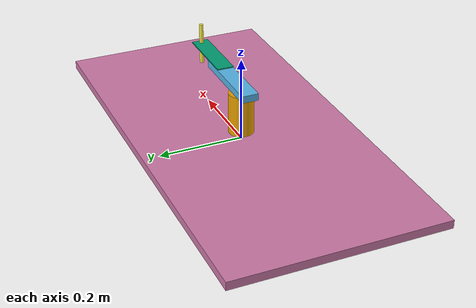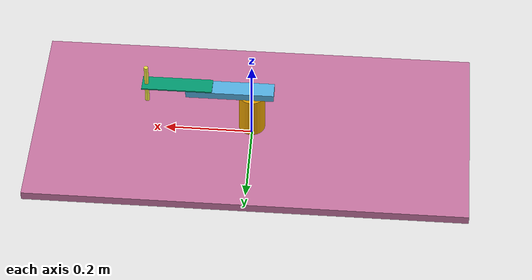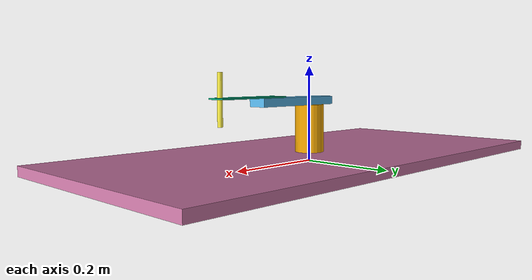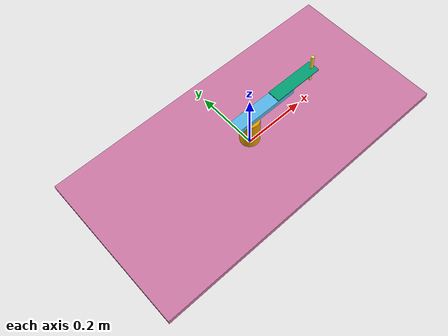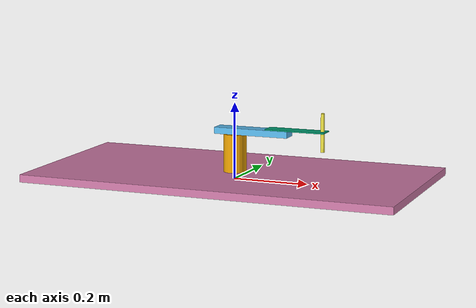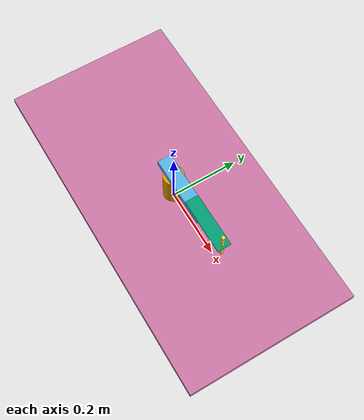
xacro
<?xml version="1.0" ?>
<robot name="myrobot" xmlns:xacro="http://wiki.ros.org/xacro">
  <xacro:include filename="$(find myrobot1_support)/urdf/myrobot_macro.xacro"/>
  <xacro:myrobot prefix=""/>
  <link name="world"/>
  <link name="table">
    <visual>
        <origin xyz="0 0 0.01" rpy="0 0 0"/>
      <geometry>
        <box size="1.0 0.5 0.02"/>
      </geometry>
    </visual>
    <collision>
        <origin xyz="0 0 0.01" rpy="0 0 0"/>
      <geometry>
        <box size="1.0 1.0 0.02"/>
      </geometry>
    </collision>
  </link>
  <link name="camera_frame"/>

  <joint name="world_to_table" type="fixed">
    <parent link="world"/>
    <child link="table"/>
    <origin xyz="0 0 0" rpy="0 0 0"/>
  </joint>

  <joint name="world_to_camera" type="fixed">
    <parent link="world"/>
    <child link="camera_frame"/>
    <origin xyz="0.1 0 0.3" rpy="0 3.14159 0"/>
  </joint>
  <joint name="table_to_robot" type="fixed">
    <parent link="table"/>
    <child link="base_link"/>
    <origin xyz="0 0 0.02" rpy="0 0 0"/>
  </joint>
</robot>

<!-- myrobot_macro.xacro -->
<robot xmlns:xacro="http://wiki.ros.org/xacro">
  <xacro:include filename="$(find fanuc_resources)/urdf/common_materials.xacro"/>

  <xacro:macro name="myrobot" params="prefix">
    <!-- links: main serial chain -->
    <link name="${prefix}base_link">
      <visual>
        <origin xyz="0 0 0.05" rpy="0 0 0"/>
        <geometry>
          <cylinder length="0.1" radius="0.03"/>
        </geometry>
        <xacro:material_fanuc_gray40 />
      </visual>
      <collision>
        <origin xyz="0 0 0.05" rpy="0 0 0"/>
        <geometry>
          <cylinder length="0.1" radius="0.03"/>
        </geometry>
      </collision>
    </link>
    <link name="${prefix}link_1">
      <visual>
        <origin xyz="0.05 0 0.0085" rpy="0 0 0"/>
        <geometry>
          <box size="0.2 0.04 0.017"/>
        </geometry>
        <xacro:material_fanuc_yellow />
      </visual>
      <collision>
        <origin xyz="0.05 0 0.0085" rpy="0 0 0"/>
        <geometry>
          <box size="0.2 0.04 0.017"/>
        </geometry>
      </collision>
    </link>
    <link name="${prefix}link_2">
      <visual>
        <origin xyz="0.03 0 0.0015" rpy="0 0 0"/>
        <geometry>
          <box size="0.16 0.04 0.003"/>
        </geometry>
        <xacro:material_fanuc_white />
      </visual>
      <collision>
        <origin xyz="0.03 0 0.0015" rpy="0 0 0"/>
        <geometry>
          <box size="0.16 0.04 0.003"/>
        </geometry>
      </collision>
    </link>
    <link name="${prefix}link_3">
      <visual>
        <origin xyz="0 0 0" rpy="0 0 0"/>
        <geometry>
          <cylinder length="0.1" radius="0.005"/>
        </geometry>
        <xacro:material_fanuc_green />
      </visual>
      <collision>
        <origin xyz="0 0 0" rpy="0 0 0"/>
        <geometry>
          <cylinder length="0.1" radius="0.005"/>
        </geometry>
      </collision>
    </link>

    <!-- joints: main serial chain -->
    <joint name="${prefix}joint_1" type="revolute">
      <origin xyz="0 0 0.1" rpy="0 0 0"/>
      <parent link="${prefix}base_link"/>
      <child link="${prefix}link_1"/>
      <axis xyz="0 0 1"/>
      <limit lower="-2.618" upper="2.618" effort="0" velocity="2.1"/>
    </joint>
    <joint name="${prefix}joint_2" type="revolute">
      <origin xyz="0.14 0 0.017" rpy="0 0 0"/>
      <parent link="${prefix}link_1"/>
      <child link="${prefix}link_2"/>
      <axis xyz="0 0 1"/>
      <limit lower="-2.618" upper="2.618" effort="0" velocity="2.1"/>
    </joint>
    <joint name="${prefix}joint_3" type="prismatic">
      <origin xyz="0.1 0 0" rpy="0 0 0"/>
      <parent link="${prefix}link_2"/>
      <child link="${prefix}link_3"/>
      <axis xyz="0 0 1"/>
      <limit lower="-0.05" upper="0.05" effort="0" velocity="0.03"/>
    </joint>

    <!-- ROS-Industrial 'base' frame: base_link to World Coordinates transform -->

    <!-- ROS-Industrial 'flange' frame: attachment point for EEF models -->

    <!-- ROS-Industrial 'tool0' frame: all-zeros tool frame -->
    <link name="${prefix}tool0" />
    <joint name="${prefix}link_3-tool0" type="fixed">
      <!--origin xyz="0 0 0" rpy="${pi} ${-pi/2.0} 0" /-->
      <origin xyz="0 0 0" rpy="0 0 0" />
      <parent link="${prefix}link_3" />
      <child link="${prefix}tool0" />
    </joint>
  </xacro:macro>
</robot>
